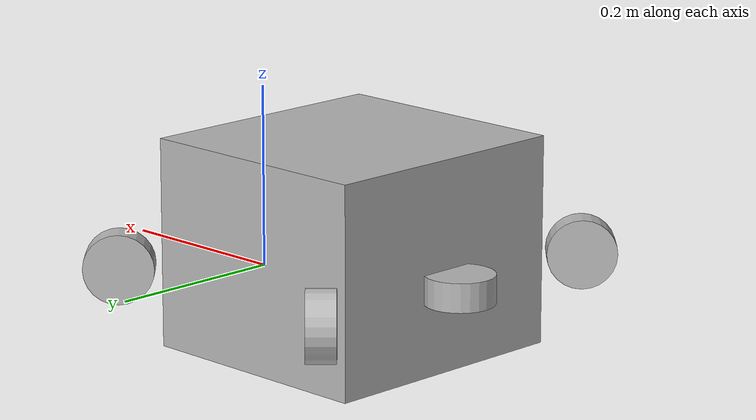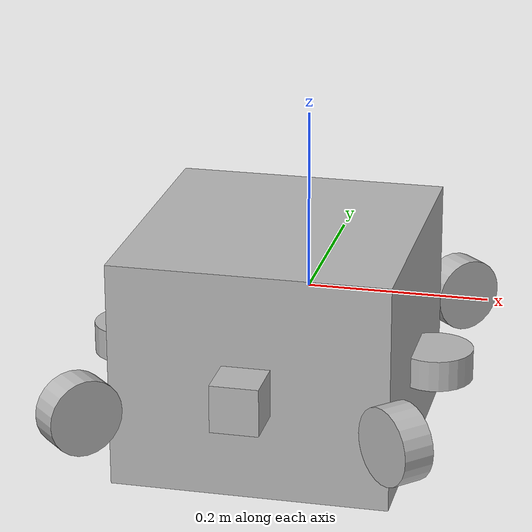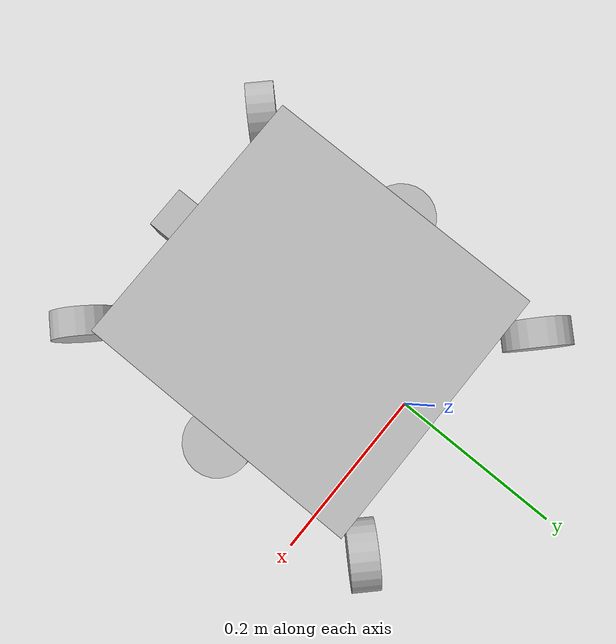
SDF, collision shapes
<sdf version='1.7'>
  <model name='nautilus'>
    <link name='body'>
      <inertial>
        <pose>0 -0.135 0 0 -0 0</pose>
        <mass>21.576</mass>
        <inertia>
          <ixx>0.083</ixx>
          <ixy>0</ixy>
          <ixz>0</ixz>
          <iyy>0.083</iyy>
          <iyz>0</iyz>
          <izz>0</izz>
        </inertia>
      </inertial>
      <collision name='body_collision'>
        <pose>0 -0.135 0 0 -0 0</pose>
        <geometry>
          <box>
            <size>0.29 0.31 0.24</size>
          </box>
        </geometry>
      </collision>
      <visual name='body_visual'>
        <pose>0 0 0 0 -0 0</pose>
        <geometry>
          <mesh>
            <scale>1 1 1</scale>
            <uri>model://nautilus/meshes/nautilus.dae</uri>
          </mesh>
        </geometry>
      </visual>
    </link>
    <joint name='camera1_joint' type='fixed'>
      <pose relative_to='body'>0 -0.32 0 0 -0 0</pose>
      <parent>body</parent>
      <child>camera1</child>
      <axis>
        <dynamics>
          <spring_reference>0</spring_reference>
          <spring_stiffness>0</spring_stiffness>
        </dynamics>
        <xyz>0 0 1</xyz>
        <limit>
          <lower>-1e+16</lower>
          <upper>1e+16</upper>
        </limit>
      </axis>
      <physics>
        <ode>
          <limit>
            <cfm>0</cfm>
            <erp>0.2</erp>
          </limit>
        </ode>
      </physics>
    </joint>
    <link name='camera1'>
      <pose relative_to='camera1_joint'>0 0 0 0 -0 0</pose>
      <inertial>
        <pose>0 0 0 0 -0 0</pose>
        <mass>0.125</mass>
        <inertia>
          <ixx>0.0001</ixx>
          <ixy>0</ixy>
          <ixz>0</ixz>
          <iyy>0.0001</iyy>
          <iyz>0</iyz>
          <izz>0.0001</izz>
        </inertia>
      </inertial>
      <collision name='camera1_collision'>
        <pose>0 0 0 0 -0 0</pose>
        <geometry>
          <box>
            <size>0.05 0.05 0.05</size>
          </box>
        </geometry>
        <surface>
          <contact>
            <ode/>
          </contact>
          <friction>
            <ode/>
          </friction>
        </surface>
      </collision>
      <visual name='camera1_visual'>
        <pose>0 0 0 0 -0 0</pose>
        <geometry>
          <box>
            <size>0.05 0.05 0.05</size>
          </box>
        </geometry>
      </visual>
      <gravity>1</gravity>
      <velocity_decay/>
      <sensor name='camera1' type='camera'>
        <update_rate>30</update_rate>
        <always_on>1</always_on>
        <camera name='front'>
          <horizontal_fov>1.39626</horizontal_fov>
          <image>
            <width>640</width>
            <height>480</height>
            <format>R8G8B8</format>
          </image>
          <clip>
            <near>0.1</near>
            <far>10</far>
          </clip>
        </camera>
        <plugin name='camera_controller' filename='libgazebo_ros_camera.so'>
          <always_on>1</always_on>
          <update_rate>30</update_rate>
          <cameraName>nautilus/camera1</cameraName>
          <imageTopicName>/nautilus/camera1/image_raw</imageTopicName>
          <cameraInfoTopicName>/nautilus/camera1/camera_info</cameraInfoTopicName>
        </plugin>
      </sensor>
    </link>
    <joint name='camera2_joint' type='fixed'>
      <pose relative_to='body'>0 -0.2 -0.125 0 -0 0</pose>
      <parent>body</parent>
      <child>camera2</child>
      <axis>
        <dynamics>
          <spring_reference>0</spring_reference>
          <spring_stiffness>0</spring_stiffness>
        </dynamics>
        <xyz>0 0 1</xyz>
        <limit>
          <lower>-1e+16</lower>
          <upper>1e+16</upper>
        </limit>
      </axis>
      <physics>
        <ode>
          <limit>
            <cfm>0</cfm>
            <erp>0.2</erp>
          </limit>
        </ode>
      </physics>
    </joint>
    <link name='camera2'>
      <pose relative_to='camera2_joint'>0 0 0 0 -0 0</pose>
      <inertial>
        <pose>0 0 0 0 -0 0</pose>
        <mass>0.125</mass>
        <inertia>
          <ixx>0.0001</ixx>
          <ixy>0</ixy>
          <ixz>0</ixz>
          <iyy>0.0001</iyy>
          <iyz>0</iyz>
          <izz>0.0001</izz>
        </inertia>
      </inertial>
      <collision name='camera2_collision'>
        <pose>0 0 0 0 -0 0</pose>
        <geometry>
          <box>
            <size>0.05 0.05 0.05</size>
          </box>
        </geometry>
        <surface>
          <contact>
            <ode/>
          </contact>
          <friction>
            <ode/>
          </friction>
        </surface>
      </collision>
      <visual name='camera2_visual'>
        <pose>0 0 0 0 -0 0</pose>
        <geometry>
          <box>
            <size>0.05 0.05 0.05</size>
          </box>
        </geometry>
      </visual>
      <gravity>1</gravity>
      <velocity_decay/>
      <self_collide>0</self_collide>
      <sensor name='camera2' type='camera'>
        <update_rate>30</update_rate>
        <always_on>1</always_on>
        <camera name='front'>
          <horizontal_fov>1.39626</horizontal_fov>
          <image>
            <width>640</width>
            <height>480</height>
            <format>R8G8B8</format>
          </image>
          <clip>
            <near>0.1</near>
            <far>10</far>
          </clip>
        </camera>
        <plugin name='camera_controller' filename='libgazebo_ros_camera.so'>
          <always_on>1</always_on>
          <update_rate>30</update_rate>
          <visualize>1</visualize>
          <cameraName>nautilus/camera2</cameraName>
          <imageTopicName>/nautilus/camera2/image_raw</imageTopicName>
          <cameraInfoTopicName>/nautilus/camera2/camera_info</cameraInfoTopicName>
        </plugin>
      </sensor>
    </link>
    <joint name='motor_A_joint' type='fixed'>
      <pose relative_to='body'>0.16 -0.34 -0.02 -1.5708 -0 -0.785398</pose>
      <parent>body</parent>
      <child>motor_A</child>
      <axis>
        <dynamics>
          <spring_reference>0</spring_reference>
          <spring_stiffness>0</spring_stiffness>
        </dynamics>
        <xyz>0 0 1</xyz>
        <limit>
          <lower>-1e+16</lower>
          <upper>1e+16</upper>
        </limit>
      </axis>
      <physics>
        <ode>
          <limit>
            <cfm>0</cfm>
            <erp>0.2</erp>
          </limit>
        </ode>
      </physics>
    </joint>
    <link name='motor_A'>
      <pose relative_to='motor_A_joint'>0 0 0 0 -0 0</pose>
      <inertial>
        <pose>0 0 0 0 -0 0</pose>
        <mass>0.165876</mass>
        <inertia>
          <ixx>0.4</ixx>
          <ixy>0</ixy>
          <ixz>0</ixz>
          <iyy>0.4</iyy>
          <iyz>0</iyz>
          <izz>0.2</izz>
        </inertia>
      </inertial>
      <collision name='motor_A_collision'>
        <pose>0 0 0 0 -0 0</pose>
        <geometry>
          <cylinder>
            <length>0.033</length>
            <radius>0.04</radius>
          </cylinder>
        </geometry>
      </collision>
      <visual name='motor_A_visual'>
        <pose>0 0 0 0 -0 0</pose>
        <geometry>
          <cylinder>
            <length>0.033</length>
            <radius>0.04</radius>
          </cylinder>
        </geometry>
      </visual>
    </link>
    <joint name='motor_B_joint' type='fixed'>
      <pose relative_to='body'>-0.16 -0.34 -0.02 -1.5708 0 0.785398</pose>
      <parent>body</parent>
      <child>motor_B</child>
      <axis>
        <dynamics>
          <spring_reference>0</spring_reference>
          <spring_stiffness>0</spring_stiffness>
        </dynamics>
        <xyz>0 0 1</xyz>
        <limit>
          <lower>-1e+16</lower>
          <upper>1e+16</upper>
        </limit>
      </axis>
      <physics>
        <ode>
          <limit>
            <cfm>0</cfm>
            <erp>0.2</erp>
          </limit>
        </ode>
      </physics>
    </joint>
    <link name='motor_B'>
      <pose relative_to='motor_B_joint'>0 0 0 0 -0 0</pose>
      <inertial>
        <pose>0 0 0 0 -0 0</pose>
        <mass>0.165876</mass>
        <inertia>
          <ixx>0.4</ixx>
          <ixy>0</ixy>
          <ixz>0</ixz>
          <iyy>0.4</iyy>
          <iyz>0</iyz>
          <izz>0.2</izz>
        </inertia>
      </inertial>
      <collision name='motor_B_collision'>
        <pose>0 0 0 0 -0 0</pose>
        <geometry>
          <cylinder>
            <length>0.033</length>
            <radius>0.04</radius>
          </cylinder>
        </geometry>
      </collision>
      <visual name='motor_B_visual'>
        <pose>0 0 0 0 -0 0</pose>
        <geometry>
          <cylinder>
            <length>0.033</length>
            <radius>0.04</radius>
          </cylinder>
        </geometry>
      </visual>
    </link>
    <joint name='motor_C_joint' type='fixed'>
      <pose relative_to='body'>0.16 0.07 -0.02 -1.5708 0 0.785398</pose>
      <parent>body</parent>
      <child>motor_C</child>
      <axis>
        <dynamics>
          <spring_reference>0</spring_reference>
          <spring_stiffness>0</spring_stiffness>
        </dynamics>
        <xyz>0 0 1</xyz>
        <limit>
          <lower>-1e+16</lower>
          <upper>1e+16</upper>
        </limit>
      </axis>
      <physics>
        <ode>
          <limit>
            <cfm>0</cfm>
            <erp>0.2</erp>
          </limit>
        </ode>
      </physics>
    </joint>
    <link name='motor_C'>
      <pose relative_to='motor_C_joint'>0 0 0 0 -0 0</pose>
      <inertial>
        <pose>0 0 0 0 -0 0</pose>
        <mass>0.165876</mass>
        <inertia>
          <ixx>0.4</ixx>
          <ixy>0</ixy>
          <ixz>0</ixz>
          <iyy>0.4</iyy>
          <iyz>0</iyz>
          <izz>0.2</izz>
        </inertia>
      </inertial>
      <collision name='motor_C_collision'>
        <pose>0 0 0 0 -0 0</pose>
        <geometry>
          <cylinder>
            <length>0.033</length>
            <radius>0.04</radius>
          </cylinder>
        </geometry>
      </collision>
      <visual name='motor_C_visual'>
        <pose>0 0 0 0 -0 0</pose>
        <geometry>
          <cylinder>
            <length>0.033</length>
            <radius>0.04</radius>
          </cylinder>
        </geometry>
      </visual>
    </link>
    <joint name='motor_D_joint' type='fixed'>
      <pose relative_to='body'>-0.16 0.07 -0.02 -1.5708 -0 -0.785398</pose>
      <parent>body</parent>
      <child>motor_D</child>
      <axis>
        <dynamics>
          <spring_reference>0</spring_reference>
          <spring_stiffness>0</spring_stiffness>
        </dynamics>
        <xyz>0 0 1</xyz>
        <limit>
          <lower>-1e+16</lower>
          <upper>1e+16</upper>
        </limit>
      </axis>
      <physics>
        <ode>
          <limit>
            <cfm>0</cfm>
            <erp>0.2</erp>
          </limit>
        </ode>
      </physics>
    </joint>
    <link name='motor_D'>
      <pose relative_to='motor_D_joint'>0 0 0 0 -0 0</pose>
      <inertial>
        <pose>0 0 0 0 -0 0</pose>
        <mass>0.165876</mass>
        <inertia>
          <ixx>0.4</ixx>
          <ixy>0</ixy>
          <ixz>0</ixz>
          <iyy>0.4</iyy>
          <iyz>0</iyz>
          <izz>0.2</izz>
        </inertia>
      </inertial>
      <collision name='motor_D_collision'>
        <pose>0 0 0 0 -0 0</pose>
        <geometry>
          <cylinder>
            <length>0.033</length>
            <radius>0.04</radius>
          </cylinder>
        </geometry>
      </collision>
      <visual name='motor_D_visual'>
        <pose>0 0 0 0 -0 0</pose>
        <geometry>
          <cylinder>
            <length>0.033</length>
            <radius>0.04</radius>
          </cylinder>
        </geometry>
      </visual>
    </link>
    <joint name='motor_E_joint' type='fixed'>
      <pose relative_to='body'>0.165 -0.135 -0.02 3.14159 -0 0</pose>
      <parent>body</parent>
      <child>motor_E</child>
      <axis>
        <dynamics>
          <spring_reference>0</spring_reference>
          <spring_stiffness>0</spring_stiffness>
        </dynamics>
        <xyz>0 0 1</xyz>
        <limit>
          <lower>-1e+16</lower>
          <upper>1e+16</upper>
        </limit>
      </axis>
      <physics>
        <ode>
          <limit>
            <cfm>0</cfm>
            <erp>0.2</erp>
          </limit>
        </ode>
      </physics>
    </joint>
    <link name='motor_E'>
      <pose relative_to='motor_E_joint'>0 0 0 0 -0 0</pose>
      <inertial>
        <pose>0 0 0 0 -0 0</pose>
        <mass>0.165876</mass>
        <inertia>
          <ixx>0.4</ixx>
          <ixy>0</ixy>
          <ixz>0</ixz>
          <iyy>0.4</iyy>
          <iyz>0</iyz>
          <izz>0.2</izz>
        </inertia>
      </inertial>
      <collision name='motor_E_collision'>
        <pose>0 0 0 0 -0 0</pose>
        <geometry>
          <cylinder>
            <length>0.033</length>
            <radius>0.04</radius>
          </cylinder>
        </geometry>
      </collision>
      <visual name='motor_E_visual'>
        <pose>0 0 0 0 -0 0</pose>
        <geometry>
          <cylinder>
            <length>0.033</length>
            <radius>0.04</radius>
          </cylinder>
        </geometry>
      </visual>
    </link>
    <joint name='motor_F_joint' type='fixed'>
      <pose relative_to='body'>-0.165 -0.135 -0.02 3.14159 -0 0</pose>
      <parent>body</parent>
      <child>motor_F</child>
      <axis>
        <dynamics>
          <spring_reference>0</spring_reference>
          <spring_stiffness>0</spring_stiffness>
        </dynamics>
        <xyz>0 0 1</xyz>
        <limit>
          <lower>-1e+16</lower>
          <upper>1e+16</upper>
        </limit>
      </axis>
      <physics>
        <ode>
          <limit>
            <cfm>0</cfm>
            <erp>0.2</erp>
          </limit>
        </ode>
      </physics>
    </joint>
    <link name='motor_F'>
      <pose relative_to='motor_F_joint'>0 0 0 0 -0 0</pose>
      <inertial>
        <pose>0 0 0 0 -0 0</pose>
        <mass>0.165876</mass>
        <inertia>
          <ixx>0.4</ixx>
          <ixy>0</ixy>
          <ixz>0</ixz>
          <iyy>0.4</iyy>
          <iyz>0</iyz>
          <izz>0.2</izz>
        </inertia>
      </inertial>
      <collision name='motor_F_collision'>
        <pose>0 0 0 0 -0 0</pose>
        <geometry>
          <cylinder>
            <length>0.033</length>
            <radius>0.04</radius>
          </cylinder>
        </geometry>
      </collision>
      <visual name='motor_F_visual'>
        <pose>0 0 0 0 -0 0</pose>
        <geometry>
          <cylinder>
            <length>0.033</length>
            <radius>0.04</radius>
          </cylinder>
        </geometry>
      </visual>
    </link>
    <plugin name='imu_plugin' filename='libgazebo_ros_imu.so'>
      <alwaysOn>1</alwaysOn>
      <bodyName>base_footprint</bodyName>
      <topicName>imu</topicName>
      <serviceName>imu_service</serviceName>
      <gaussianNoise>0.0</gaussianNoise>
      <updateRate>20.0</updateRate>
    </plugin>
    <plugin name='BuoyancyPlugin' filename='libBuoyancyPlugin.so'>
      <fluid_density>1000</fluid_density>
      <link name='body'>
        <volume>0.021576</volume>
        <center_of_volume>0 -.135 0</center_of_volume>
      </link>
    </plugin>
    <static>0</static>
    <plugin name='thruster' filename='libthruster.so'/>
  </model>
</sdf>
